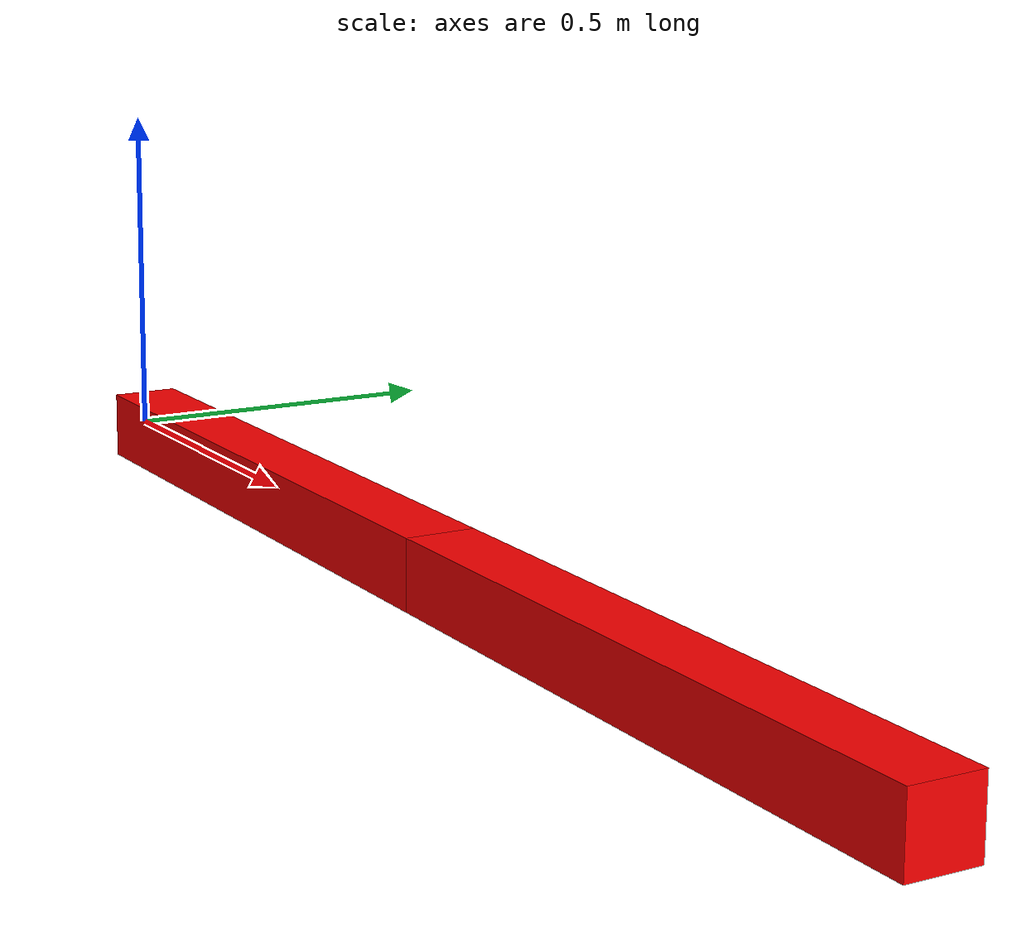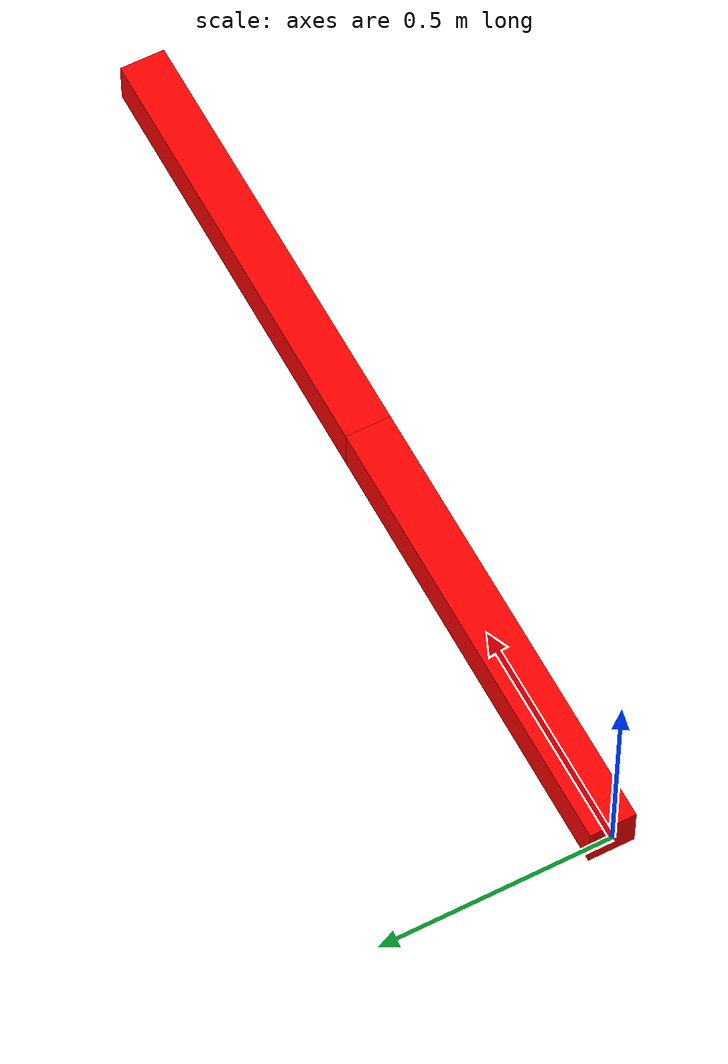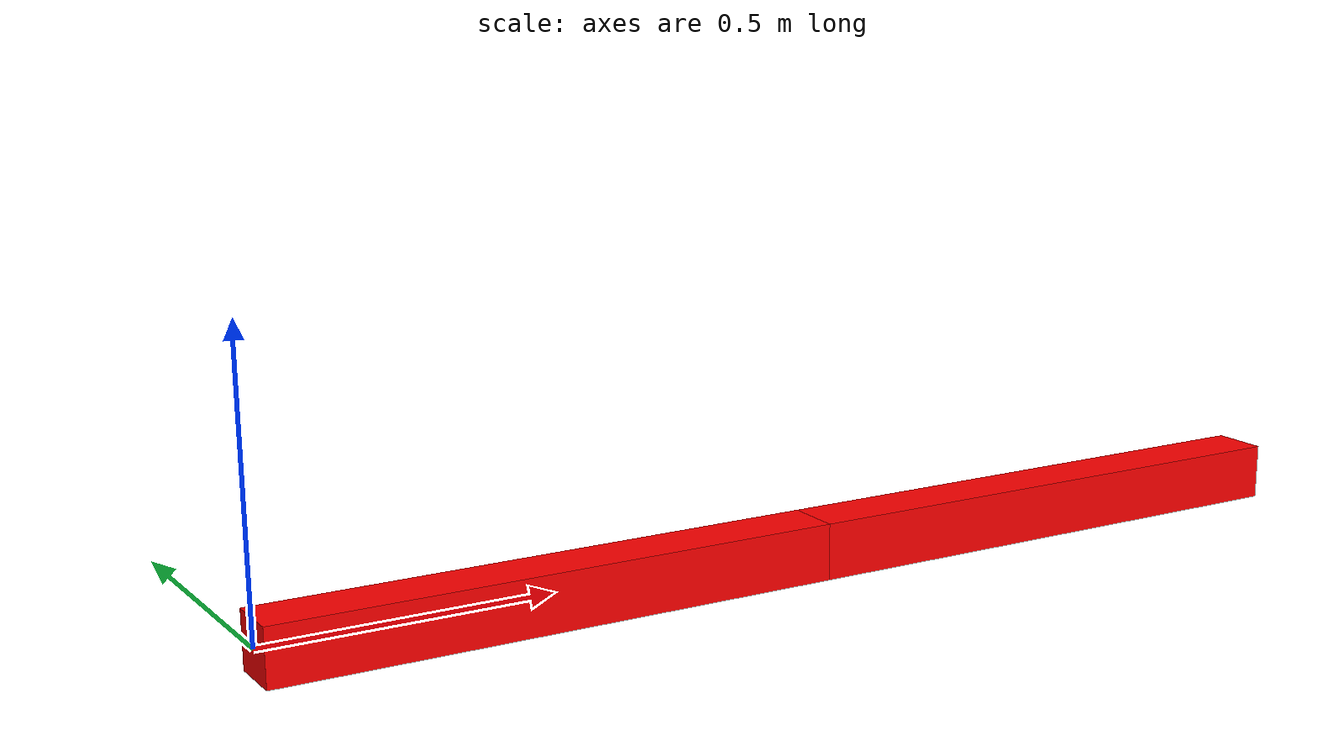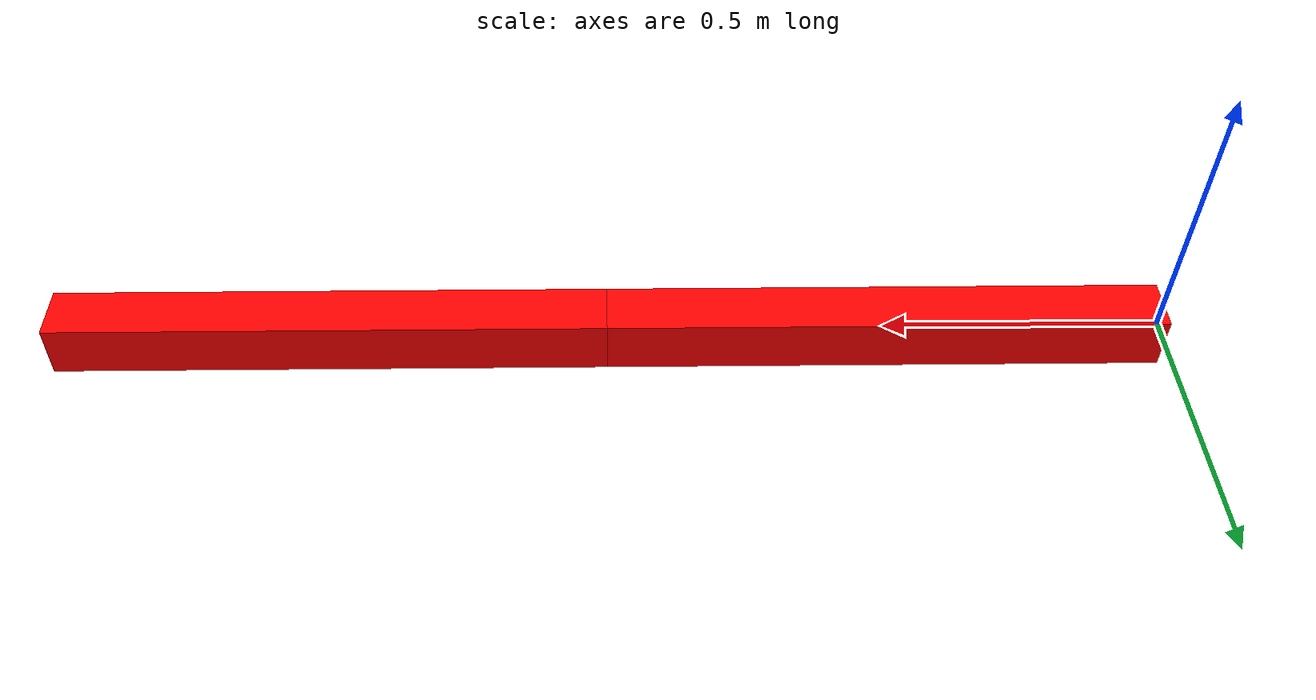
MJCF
<mujoco>
    <worldbody>
        <light name="top" pos="0 0 1"/>
        <body name="A" pos="0 0 0">
            <joint name="j1" type="hinge" axis="0 1 0" pos="0 0 0"/>
            <geom type="box" size=".5 .05 .05" pos=".5 0 0" rgba="1 0 0 1" mass="1"/>
            <body name="B" pos="1 0 0">
                <joint name="j2" type="hinge" axis="0 1 0" pos="0 0 0"/>
                <geom type="box" size=".5 .05 .05" pos=".5 0 0" rgba="1 0 0 1" mass="1"/>
            </body>
        </body>
    </worldbody>
    <actuator>
        <general name="m1" joint="j1"/>
        <general name="m2" joint="j2"/>
    </actuator>

</mujoco>
